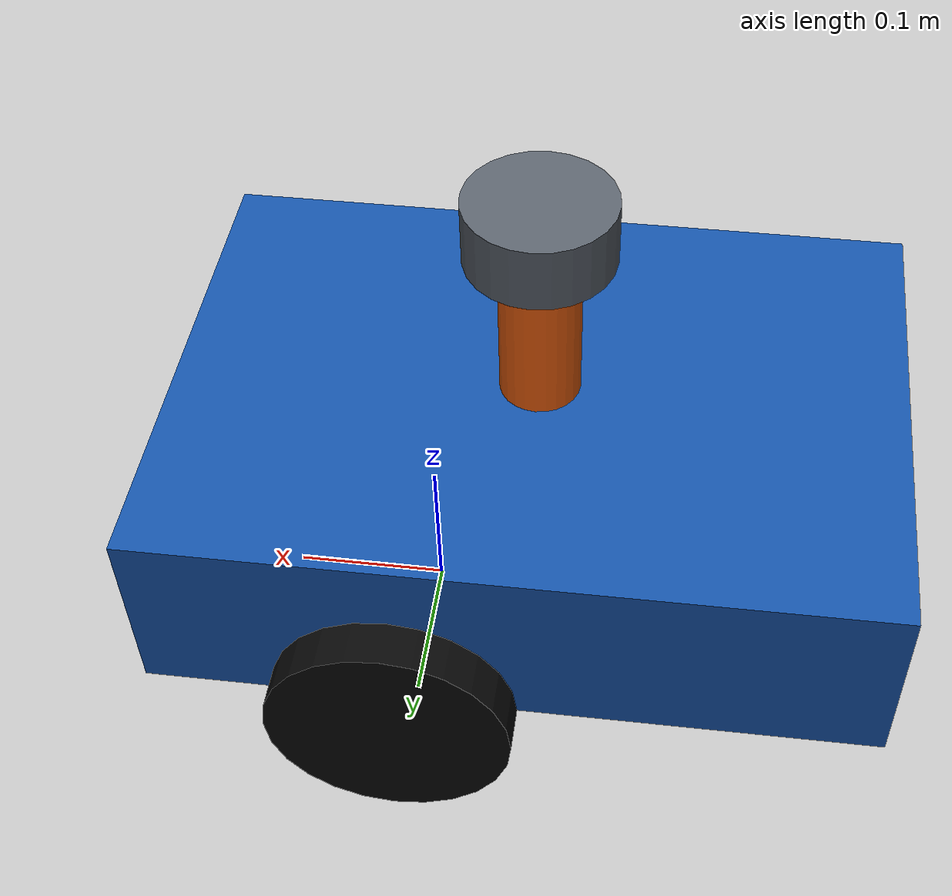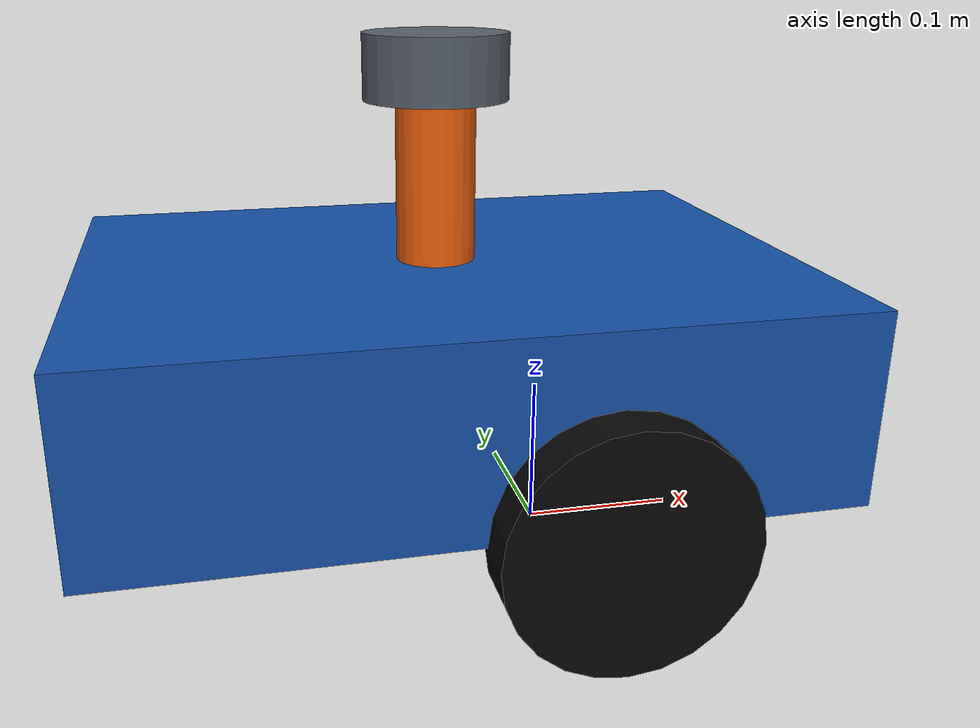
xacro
<?xml version="1.0"?>
<robot name="slam_robot" xmlns:xacro="http://www.ros.org/wiki/xacro">
  <xacro:arg name="sensor_variant" default="2d"/>
  <xacro:arg name="camera_variant" default="none"/>
  <xacro:arg name="odometry_mode" default="wheel"/>
  <xacro:arg name="left_wheel_friction" default="1.2"/>
  <xacro:arg name="right_wheel_friction" default="1.2"/>
  <xacro:arg name="lidar_3d_x" default="-0.07"/>
  <xacro:arg name="lidar_3d_y" default="0.0"/>
  <xacro:arg name="lidar_3d_z" default="0.18"/>
  <xacro:arg name="lidar_3d_roll" default="0.0"/>
  <xacro:arg name="lidar_3d_pitch" default="0.0"/>
  <xacro:arg name="lidar_3d_yaw" default="0.0"/>
  <xacro:arg name="lidar_3d_horizontal_samples" default="720"/>
  <xacro:arg name="lidar_3d_horizontal_min_angle" default="-3.141592653589793"/>
  <xacro:arg name="lidar_3d_horizontal_max_angle" default="3.1328660073298216"/>
  <xacro:arg name="lidar_3d_vertical_samples" default="16"/>
  <xacro:arg name="lidar_3d_vertical_min_angle" default="-0.2617993877991494"/>
  <xacro:arg name="lidar_3d_vertical_max_angle" default="0.2617993877991494"/>
  <xacro:arg name="lidar_3d_update_rate" default="10.0"/>
  <xacro:arg name="lidar_3d_minimum_range" default="0.20"/>
  <xacro:arg name="lidar_3d_maximum_range" default="20.0"/>
  <xacro:arg name="lidar_3d_noise_stddev" default="0.01"/>
  <xacro:arg name="rgbd_width" default="640"/>
  <xacro:arg name="rgbd_height" default="480"/>
  <xacro:arg name="rgbd_update_rate" default="30.0"/>
  <xacro:arg name="rgbd_horizontal_fov" default="1.2217304763960306"/>
  <xacro:arg name="rgbd_minimum_depth" default="0.20"/>
  <xacro:arg name="rgbd_maximum_depth" default="6.0"/>
  <xacro:arg name="imu_update_rate" default="100.0"/>
  <xacro:arg name="imu_angular_velocity_noise_stddev" default="0.002"/>
  <xacro:arg name="imu_angular_velocity_bias_stddev" default="0.0002"/>
  <xacro:arg name="imu_linear_acceleration_noise_stddev" default="0.02"/>
  <xacro:arg name="imu_linear_acceleration_bias_stddev" default="0.005"/>

  <xacro:include filename="$(find slam_robot_description)/urdf/materials.xacro"/>
  <xacro:include filename="$(find slam_robot_description)/urdf/inertial_macros.xacro"/>

  <!-- Main dimensions, in SI units. -->
  <xacro:property name="base_length" value="0.45"/>
  <xacro:property name="base_width" value="0.32"/>
  <xacro:property name="base_height" value="0.12"/>
  <xacro:property name="base_mass" value="12.0"/>
  <!-- The drive axle is 7 cm ahead of the chassis geometric center. -->
  <xacro:property name="drive_axle_offset" value="0.07"/>

  <xacro:property name="wheel_radius" value="0.075"/>
  <xacro:property name="wheel_width" value="0.035"/>
  <!-- Joint-center spacing used by the robot geometry. -->
  <xacro:property name="wheel_separation" value="0.34"/>
  <xacro:property name="effective_wheel_separation" value="0.306"/>
  <xacro:property name="wheel_mass" value="0.65"/>

  <xacro:property name="caster_radius" value="0.04"/>
  <xacro:property name="caster_mass" value="0.15"/>
  <xacro:property name="caster_offset_from_chassis_center" value="0.15"/>

  <xacro:property name="lidar_radius" value="0.045"/>
  <xacro:property name="lidar_height" value="0.04"/>
  <xacro:property name="lidar_mass" value="0.18"/>
  <xacro:property name="lidar_mount_radius" value="0.025"/>
  <xacro:property name="lidar_mount_height" value="0.10"/>
  <xacro:property name="lidar_mount_mass" value="0.12"/>

  <!-- The 2D and 3D LiDAR variants are mutually exclusive. -->
  <xacro:property name="lidar_3d_mount_radius" value="0.028"/>
  <xacro:property name="lidar_3d_mount_height" value="0.085"/>
  <xacro:property name="lidar_3d_mount_mass" value="0.10"/>
  <xacro:property name="lidar_3d_radius" value="0.055"/>
  <xacro:property name="lidar_3d_height" value="0.07"/>
  <xacro:property name="lidar_3d_mass" value="0.32"/>

  <xacro:property name="imu_length" value="0.04"/>
  <xacro:property name="imu_width" value="0.03"/>
  <xacro:property name="imu_height" value="0.015"/>
  <xacro:property name="imu_mass" value="0.02"/>

  <xacro:property name="camera_x" value="0.155"/>
  <xacro:property name="camera_z" value="0.09"/>
  <xacro:property name="camera_body_length" value="0.03"/>
  <xacro:property name="camera_body_width" value="0.14"/>
  <xacro:property name="camera_body_height" value="0.04"/>
  <xacro:property name="camera_body_mass" value="0.09"/>
  <xacro:property name="camera_mount_length" value="0.03"/>
  <xacro:property name="camera_mount_width" value="0.04"/>
  <xacro:property name="camera_mount_height" value="0.015"/>
  <xacro:property name="camera_mount_mass" value="0.03"/>

  <link name="base_footprint"/>

  <link name="base_link">
    <visual>
      <origin xyz="${-drive_axle_offset} 0 0" rpy="0 0 0"/>
      <geometry>
        <box size="${base_length} ${base_width} ${base_height}"/>
      </geometry>
      <material name="body_blue"/>
    </visual>
    <collision>
      <origin xyz="${-drive_axle_offset} 0 0" rpy="0 0 0"/>
      <geometry>
        <box size="${base_length} ${base_width} ${base_height}"/>
      </geometry>
    </collision>
    <inertial>
      <mass value="${base_mass}"/>
      <origin xyz="${-drive_axle_offset} 0 0" rpy="0 0 0"/>
      <inertia
        ixx="${base_mass * (base_width * base_width + base_height * base_height) / 12.0}"
        ixy="0.0"
        ixz="0.0"
        iyy="${base_mass * (base_length * base_length + base_height * base_height) / 12.0}"
        iyz="0.0"
        izz="${base_mass * (base_length * base_length + base_width * base_width) / 12.0}"/>
    </inertial>
  </link>

  <joint name="base_footprint_joint" type="fixed">
    <parent link="base_footprint"/>
    <child link="base_link"/>
    <origin xyz="0 0 ${wheel_radius + base_height / 2.0}" rpy="0 0 0"/>
  </joint>

  <xacro:macro name="drive_wheel" params="side reflect">
    <link name="${side}_wheel_link">
      <visual>
        <origin xyz="0 0 0" rpy="${pi / 2.0} 0 0"/>
        <geometry>
          <cylinder radius="${wheel_radius}" length="${wheel_width}"/>
        </geometry>
        <material name="wheel_black"/>
      </visual>
      <collision>
        <origin xyz="0 0 0" rpy="${pi / 2.0} 0 0"/>
        <geometry>
          <cylinder radius="${wheel_radius}" length="${wheel_width}"/>
        </geometry>
      </collision>
      <!-- The wheel cylinder axis is y in the link frame. -->
      <inertial>
        <mass value="${wheel_mass}"/>
        <origin xyz="0 0 0" rpy="0 0 0"/>
        <inertia
          ixx="${wheel_mass * (3.0 * wheel_radius * wheel_radius + wheel_width * wheel_width) / 12.0}"
          ixy="0.0"
          ixz="0.0"
          iyy="${wheel_mass * wheel_radius * wheel_radius / 2.0}"
          iyz="0.0"
          izz="${wheel_mass * (3.0 * wheel_radius * wheel_radius + wheel_width * wheel_width) / 12.0}"/>
      </inertial>
    </link>

    <joint name="${side}_wheel_joint" type="continuous">
      <parent link="base_link"/>
      <child link="${side}_wheel_link"/>
      <origin
        xyz="0 ${reflect * wheel_separation / 2.0} ${-base_height / 2.0}"
        rpy="0 0 0"/>
      <axis xyz="0 1 0"/>
    </joint>
  </xacro:macro>

  <xacro:drive_wheel side="left" reflect="1"/>
  <xacro:drive_wheel side="right" reflect="-1"/>

  <link name="caster_link">
    <visual>
      <geometry>
        <sphere radius="${caster_radius}"/>
      </geometry>
      <material name="wheel_black"/>
    </visual>
    <collision>
      <geometry>
        <sphere radius="${caster_radius}"/>
      </geometry>
    </collision>
    <xacro:sphere_inertial mass="${caster_mass}" radius="${caster_radius}"/>
  </link>

  <joint name="caster_joint" type="fixed">
    <parent link="base_link"/>
    <child link="caster_link"/>
    <origin
      xyz="${-(drive_axle_offset + caster_offset_from_chassis_center)} 0 ${-(wheel_radius + base_height / 2.0 - caster_radius)}"
      rpy="0 0 0"/>
  </joint>

  <link name="imu_link">
    <visual>
      <geometry>
        <box size="${imu_length} ${imu_width} ${imu_height}"/>
      </geometry>
      <material name="accent_orange"/>
    </visual>
    <inertial>
      <mass value="${imu_mass}"/>
      <inertia
        ixx="${imu_mass * (imu_width * imu_width + imu_height * imu_height) / 12.0}"
        ixy="0.0"
        ixz="0.0"
        iyy="${imu_mass * (imu_length * imu_length + imu_height * imu_height) / 12.0}"
        iyz="0.0"
        izz="${imu_mass * (imu_length * imu_length + imu_width * imu_width) / 12.0}"/>
    </inertial>
  </link>

  <joint name="imu_joint" type="fixed">
    <parent link="base_link"/>
    <child link="imu_link"/>
    <origin xyz="0 0 0" rpy="0 0 0"/>
  </joint>

  <xacro:if value="${'$(arg camera_variant)' == 'rgbd'}">
    <link name="camera_mount_link">
      <visual>
        <geometry>
          <box size="${camera_mount_length} ${camera_mount_width} ${camera_mount_height}"/>
        </geometry>
        <material name="accent_orange"/>
      </visual>
      <collision>
        <geometry>
          <box size="${camera_mount_length} ${camera_mount_width} ${camera_mount_height}"/>
        </geometry>
      </collision>
      <xacro:box_inertial
        mass="${camera_mount_mass}"
        length="${camera_mount_length}"
        width="${camera_mount_width}"
        height="${camera_mount_height}"/>
    </link>

    <joint name="camera_mount_joint" type="fixed">
      <parent link="base_link"/>
      <child link="camera_mount_link"/>
      <origin
        xyz="${camera_x - camera_body_length} 0 ${base_height / 2.0 + camera_mount_height / 2.0}"
        rpy="0 0 0"/>
    </joint>

    <link name="camera_link">
      <visual>
        <origin xyz="${-camera_body_length / 2.0} 0 0" rpy="0 0 0"/>
        <geometry>
          <box size="${camera_body_length} ${camera_body_width} ${camera_body_height}"/>
        </geometry>
        <material name="sensor_gray"/>
      </visual>
      <collision>
        <origin xyz="${-camera_body_length / 2.0} 0 0" rpy="0 0 0"/>
        <geometry>
          <box size="${camera_body_length} ${camera_body_width} ${camera_body_height}"/>
        </geometry>
      </collision>
      <inertial>
        <mass value="${camera_body_mass}"/>
        <origin xyz="${-camera_body_length / 2.0} 0 0" rpy="0 0 0"/>
        <inertia
          ixx="${camera_body_mass * (camera_body_width * camera_body_width + camera_body_height * camera_body_height) / 12.0}"
          ixy="0.0"
          ixz="0.0"
          iyy="${camera_body_mass * (camera_body_length * camera_body_length + camera_body_height * camera_body_height) / 12.0}"
          iyz="0.0"
          izz="${camera_body_mass * (camera_body_length * camera_body_length + camera_body_width * camera_body_width) / 12.0}"/>
      </inertial>
    </link>

    <joint name="camera_joint" type="fixed">
      <parent link="camera_mount_link"/>
      <child link="camera_link"/>
      <origin
        xyz="${camera_body_length} 0 ${camera_z - (base_height / 2.0 + camera_mount_height / 2.0)}"
        rpy="0 0 0"/>
    </joint>

    <link name="camera_optical_frame"/>

    <joint name="camera_optical_joint" type="fixed">
      <parent link="camera_link"/>
      <child link="camera_optical_frame"/>
      <!-- REP-103 camera frame (x forward) to optical frame (z forward). -->
      <origin xyz="0 0 0" rpy="${-pi / 2.0} 0 ${-pi / 2.0}"/>
    </joint>
  </xacro:if>

  <xacro:unless value="${'$(arg sensor_variant)' == '3d'}">
    <link name="lidar_mount_link">
    <visual>
      <geometry>
        <cylinder radius="${lidar_mount_radius}" length="${lidar_mount_height}"/>
      </geometry>
      <material name="accent_orange"/>
    </visual>
    <collision>
      <geometry>
        <cylinder radius="${lidar_mount_radius}" length="${lidar_mount_height}"/>
      </geometry>
    </collision>
    <xacro:cylinder_inertial
      mass="${lidar_mount_mass}"
      radius="${lidar_mount_radius}"
      length="${lidar_mount_height}"/>
    </link>

    <joint name="lidar_mount_joint" type="fixed">
    <parent link="base_link"/>
    <child link="lidar_mount_link"/>
    <origin
      xyz="${-drive_axle_offset} 0 ${base_height / 2.0 + lidar_mount_height / 2.0}"
      rpy="0 0 0"/>
    </joint>

    <link name="lidar_link">
    <visual>
      <geometry>
        <cylinder radius="${lidar_radius}" length="${lidar_height}"/>
      </geometry>
      <material name="sensor_gray"/>
    </visual>
    <collision>
      <geometry>
        <cylinder radius="${lidar_radius}" length="${lidar_height}"/>
      </geometry>
    </collision>
    <xacro:cylinder_inertial
      mass="${lidar_mass}"
      radius="${lidar_radius}"
      length="${lidar_height}"/>
    </link>

    <joint name="lidar_joint" type="fixed">
      <parent link="lidar_mount_link"/>
      <child link="lidar_link"/>
      <origin xyz="0 0 ${(lidar_mount_height + lidar_height) / 2.0}" rpy="0 0 0"/>
    </joint>
  </xacro:unless>

  <xacro:if value="${'$(arg sensor_variant)' == '3d'}">
    <link name="lidar_3d_mount_link">
      <visual>
        <geometry>
          <cylinder radius="${lidar_3d_mount_radius}" length="${lidar_3d_mount_height}"/>
        </geometry>
        <material name="accent_orange"/>
      </visual>
      <collision>
        <geometry>
          <cylinder radius="${lidar_3d_mount_radius}" length="${lidar_3d_mount_height}"/>
        </geometry>
      </collision>
      <xacro:cylinder_inertial
        mass="${lidar_3d_mount_mass}"
        radius="${lidar_3d_mount_radius}"
        length="${lidar_3d_mount_height}"/>
    </link>

    <joint name="lidar_3d_mount_joint" type="fixed">
      <parent link="base_link"/>
      <child link="lidar_3d_mount_link"/>
      <origin
        xyz="$(arg lidar_3d_x) $(arg lidar_3d_y) ${float('$(arg lidar_3d_z)') - (lidar_3d_mount_height + lidar_3d_height) / 2.0}"
        rpy="$(arg lidar_3d_roll) $(arg lidar_3d_pitch) $(arg lidar_3d_yaw)"/>
    </joint>

    <link name="lidar_3d_link">
      <visual>
        <geometry>
          <cylinder radius="${lidar_3d_radius}" length="${lidar_3d_height}"/>
        </geometry>
        <material name="sensor_gray"/>
      </visual>
      <collision>
        <geometry>
          <cylinder radius="${lidar_3d_radius}" length="${lidar_3d_height}"/>
        </geometry>
      </collision>
      <xacro:cylinder_inertial
        mass="${lidar_3d_mass}"
        radius="${lidar_3d_radius}"
        length="${lidar_3d_height}"/>
    </link>

    <joint name="lidar_3d_joint" type="fixed">
      <parent link="lidar_3d_mount_link"/>
      <child link="lidar_3d_link"/>
      <origin
        xyz="0 0 ${(lidar_3d_mount_height + lidar_3d_height) / 2.0}"
        rpy="0 0 0"/>
    </joint>
  </xacro:if>

  <xacro:include filename="$(find slam_robot_description)/urdf/gazebo.xacro"/>
</robot>

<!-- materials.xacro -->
<robot xmlns:xacro="http://www.ros.org/wiki/xacro">
  <material name="body_blue">
    <color rgba="0.08 0.32 0.65 1.0"/>
  </material>

  <material name="wheel_black">
    <color rgba="0.03 0.03 0.03 1.0"/>
  </material>

  <material name="sensor_gray">
    <color rgba="0.35 0.38 0.42 1.0"/>
  </material>

  <material name="accent_orange">
    <color rgba="0.95 0.38 0.05 1.0"/>
  </material>
</robot>

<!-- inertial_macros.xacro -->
<robot xmlns:xacro="http://www.ros.org/wiki/xacro">
  <xacro:macro name="box_inertial" params="mass length width height">
    <inertial>
      <mass value="${mass}"/>
      <origin xyz="0 0 0" rpy="0 0 0"/>
      <inertia
        ixx="${mass * (width * width + height * height) / 12.0}"
        ixy="0.0"
        ixz="0.0"
        iyy="${mass * (length * length + height * height) / 12.0}"
        iyz="0.0"
        izz="${mass * (length * length + width * width) / 12.0}"/>
    </inertial>
  </xacro:macro>

  <!-- Cylinder axis is the local z axis. -->
  <xacro:macro name="cylinder_inertial" params="mass radius length">
    <inertial>
      <mass value="${mass}"/>
      <origin xyz="0 0 0" rpy="0 0 0"/>
      <inertia
        ixx="${mass * (3.0 * radius * radius + length * length) / 12.0}"
        ixy="0.0"
        ixz="0.0"
        iyy="${mass * (3.0 * radius * radius + length * length) / 12.0}"
        iyz="0.0"
        izz="${mass * radius * radius / 2.0}"/>
    </inertial>
  </xacro:macro>

  <xacro:macro name="sphere_inertial" params="mass radius">
    <inertial>
      <mass value="${mass}"/>
      <origin xyz="0 0 0" rpy="0 0 0"/>
      <inertia
        ixx="${2.0 * mass * radius * radius / 5.0}"
        ixy="0.0"
        ixz="0.0"
        iyy="${2.0 * mass * radius * radius / 5.0}"
        iyz="0.0"
        izz="${2.0 * mass * radius * radius / 5.0}"/>
    </inertial>
  </xacro:macro>
</robot>
